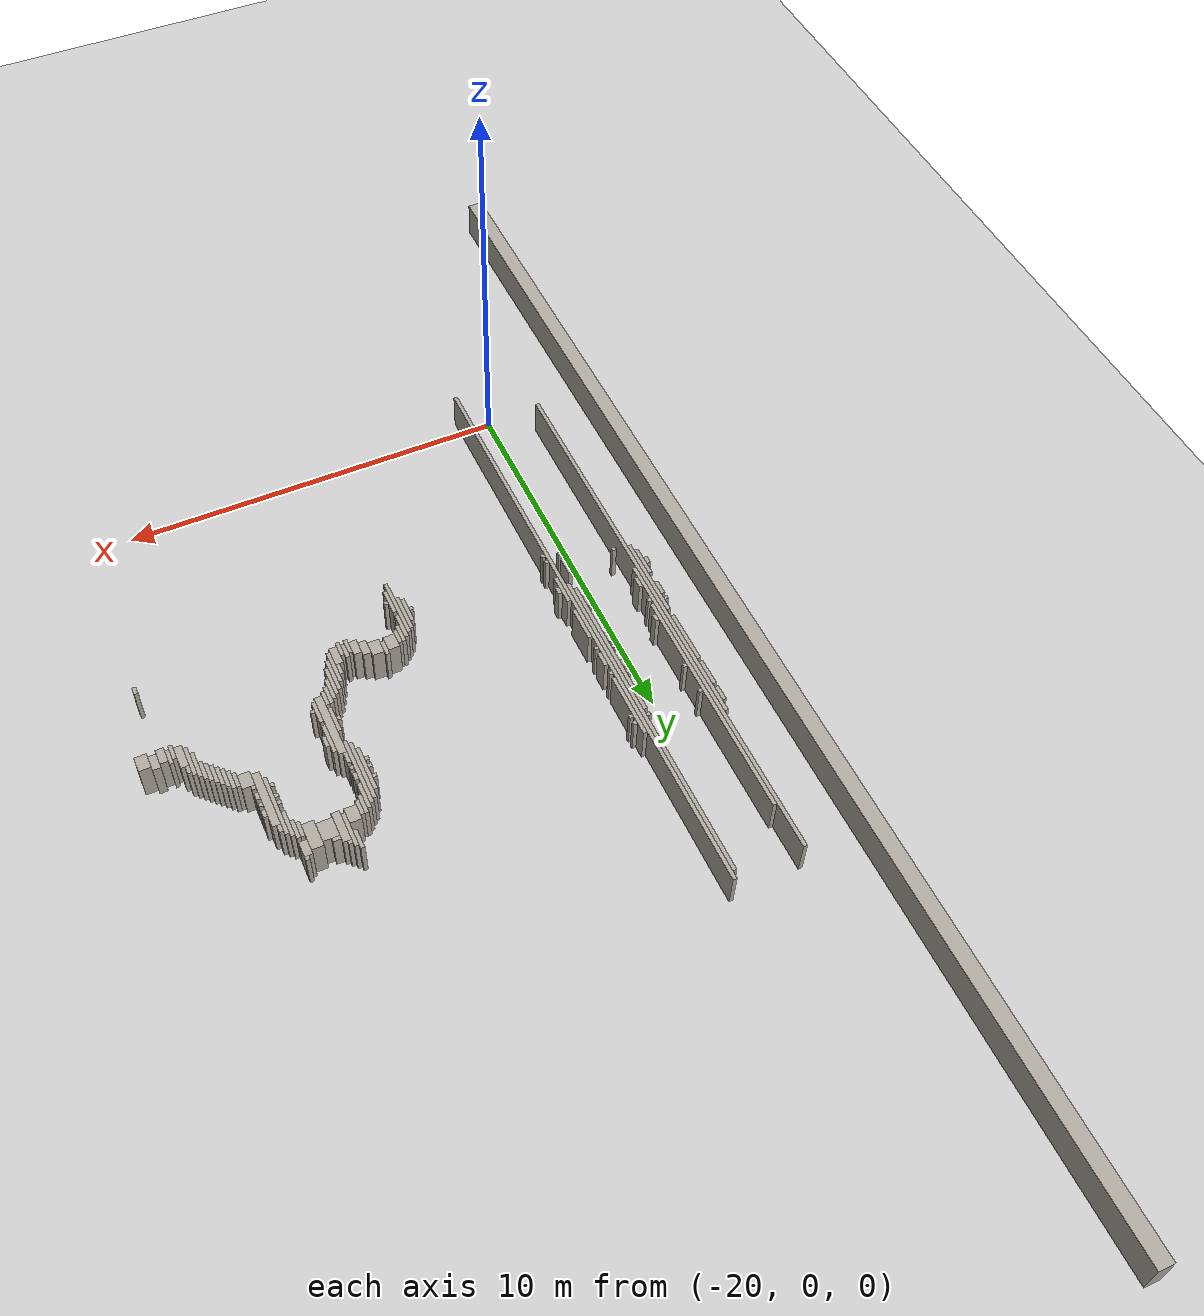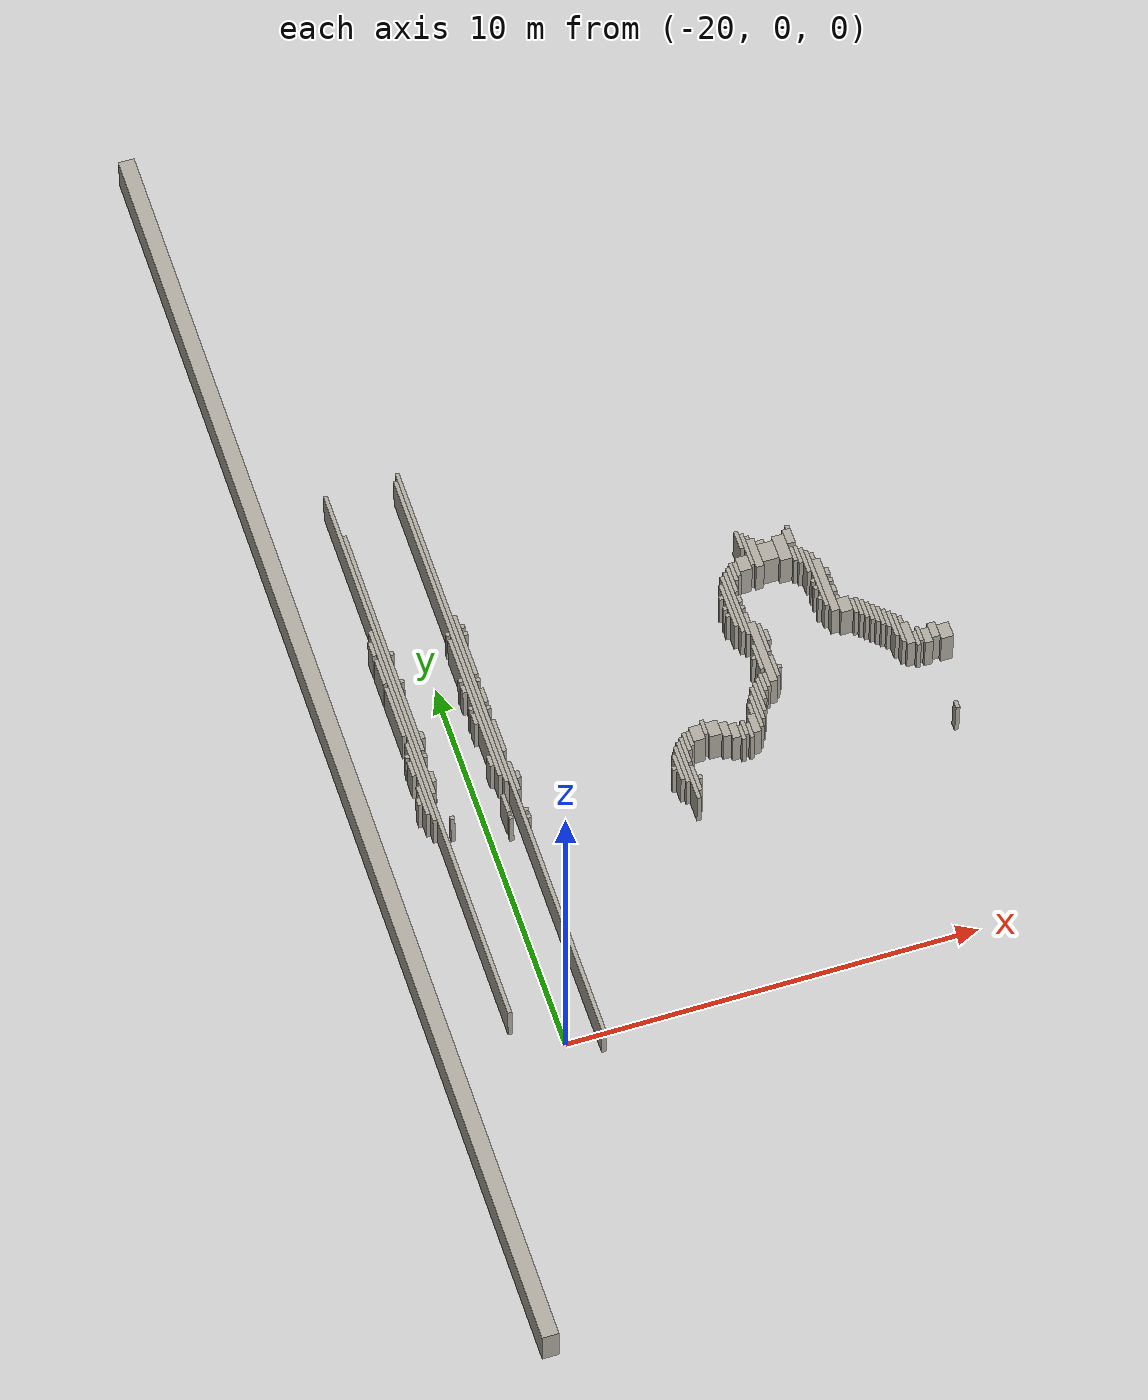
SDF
<sdf version="1.6">
 <world name="willow_office">
  <include><uri>model://sun</uri></include>
  <include><uri>model://ground_plane</uri></include>
  <model name="willow_office_walls">
   <static>true</static>
   <link name="w0001">
    <pose>-22.785 9.262 0.500 0 0 0</pose>
    <collision name="c"><geometry><box><size>0.400 33.600 1.000</size></box></geometry></collision>
    <visual name="v">
     <geometry><box><size>0.400 33.600 1.000</size></box></geometry>
     <material><ambient>0.68 0.66 0.62 1</ambient><diffuse>0.68 0.66 0.62 1</diffuse></material>
    </visual>
   </link>
   <link name="w0492">
    <pose>-19.235 7.512 0.500 0 0 0</pose>
    <collision name="c"><geometry><box><size>0.100 15.900 1.000</size></box></geometry></collision>
    <visual name="v">
     <geometry><box><size>0.100 15.900 1.000</size></box></geometry>
     <material><ambient>0.68 0.66 0.62 1</ambient><diffuse>0.68 0.66 0.62 1</diffuse></material>
    </visual>
   </link>
   <link name="w0516">
    <pose>-21.135 6.062 0.500 0 0 0</pose>
    <collision name="c"><geometry><box><size>0.100 10.800 1.000</size></box></geometry></collision>
    <visual name="v">
     <geometry><box><size>0.100 10.800 1.000</size></box></geometry>
     <material><ambient>0.68 0.66 0.62 1</ambient><diffuse>0.68 0.66 0.62 1</diffuse></material>
    </visual>
   </link>
   <link name="w0625">
    <pose>-15.235 5.562 0.500 0 0 0</pose>
    <collision name="c"><geometry><box><size>0.100 1.600 1.000</size></box></geometry></collision>
    <visual name="v">
     <geometry><box><size>0.100 1.600 1.000</size></box></geometry>
     <material><ambient>0.68 0.66 0.62 1</ambient><diffuse>0.68 0.66 0.62 1</diffuse></material>
    </visual>
   </link>
   <link name="w0631">
    <pose>-15.135 5.312 0.500 0 0 0</pose>
    <collision name="c"><geometry><box><size>0.100 0.700 1.000</size></box></geometry></collision>
    <visual name="v">
     <geometry><box><size>0.100 0.700 1.000</size></box></geometry>
     <material><ambient>0.68 0.66 0.62 1</ambient><diffuse>0.68 0.66 0.62 1</diffuse></material>
    </visual>
   </link>
   <link name="w0633">
    <pose>-15.335 5.762 0.500 0 0 0</pose>
    <collision name="c"><geometry><box><size>0.100 1.000 1.000</size></box></geometry></collision>
    <visual name="v">
     <geometry><box><size>0.100 1.000 1.000</size></box></geometry>
     <material><ambient>0.68 0.66 0.62 1</ambient><diffuse>0.68 0.66 0.62 1</diffuse></material>
    </visual>
   </link>
   <link name="w0634">
    <pose>-15.035 5.312 0.500 0 0 0</pose>
    <collision name="c"><geometry><box><size>0.100 0.100 1.000</size></box></geometry></collision>
    <visual name="v">
     <geometry><box><size>0.100 0.100 1.000</size></box></geometry>
     <material><ambient>0.68 0.66 0.62 1</ambient><diffuse>0.68 0.66 0.62 1</diffuse></material>
    </visual>
   </link>
   <link name="w0635">
    <pose>-8.735 5.362 0.500 0 0 0</pose>
    <collision name="c"><geometry><box><size>0.100 0.200 1.000</size></box></geometry></collision>
    <visual name="v">
     <geometry><box><size>0.100 0.200 1.000</size></box></geometry>
     <material><ambient>0.68 0.66 0.62 1</ambient><diffuse>0.68 0.66 0.62 1</diffuse></material>
    </visual>
   </link>
   <link name="w0638">
    <pose>-15.435 5.712 0.500 0 0 0</pose>
    <collision name="c"><geometry><box><size>0.100 0.700 1.000</size></box></geometry></collision>
    <visual name="v">
     <geometry><box><size>0.100 0.700 1.000</size></box></geometry>
     <material><ambient>0.68 0.66 0.62 1</ambient><diffuse>0.68 0.66 0.62 1</diffuse></material>
    </visual>
   </link>
   <link name="w0640">
    <pose>-19.135 5.512 0.500 0 0 0</pose>
    <collision name="c"><geometry><box><size>0.100 0.100 1.000</size></box></geometry></collision>
    <visual name="v">
     <geometry><box><size>0.100 0.100 1.000</size></box></geometry>
     <material><ambient>0.68 0.66 0.62 1</ambient><diffuse>0.68 0.66 0.62 1</diffuse></material>
    </visual>
   </link>
   <link name="w0643">
    <pose>-19.535 5.612 0.500 0 0 0</pose>
    <collision name="c"><geometry><box><size>0.100 0.100 1.000</size></box></geometry></collision>
    <visual name="v">
     <geometry><box><size>0.100 0.100 1.000</size></box></geometry>
     <material><ambient>0.68 0.66 0.62 1</ambient><diffuse>0.68 0.66 0.62 1</diffuse></material>
    </visual>
   </link>
   <link name="w0645">
    <pose>-19.135 5.712 0.500 0 0 0</pose>
    <collision name="c"><geometry><box><size>0.100 0.100 1.000</size></box></geometry></collision>
    <visual name="v">
     <geometry><box><size>0.100 0.100 1.000</size></box></geometry>
     <material><ambient>0.68 0.66 0.62 1</ambient><diffuse>0.68 0.66 0.62 1</diffuse></material>
    </visual>
   </link>
   <link name="w0646">
    <pose>-15.535 5.712 0.500 0 0 0</pose>
    <collision name="c"><geometry><box><size>0.100 0.100 1.000</size></box></geometry></collision>
    <visual name="v">
     <geometry><box><size>0.100 0.100 1.000</size></box></geometry>
     <material><ambient>0.68 0.66 0.62 1</ambient><diffuse>0.68 0.66 0.62 1</diffuse></material>
    </visual>
   </link>
   <link name="w0649">
    <pose>-19.535 6.012 0.500 0 0 0</pose>
    <collision name="c"><geometry><box><size>0.100 0.500 1.000</size></box></geometry></collision>
    <visual name="v">
     <geometry><box><size>0.100 0.500 1.000</size></box></geometry>
     <material><ambient>0.68 0.66 0.62 1</ambient><diffuse>0.68 0.66 0.62 1</diffuse></material>
    </visual>
   </link>
   <link name="w0650">
    <pose>-15.135 6.112 0.500 0 0 0</pose>
    <collision name="c"><geometry><box><size>0.100 0.700 1.000</size></box></geometry></collision>
    <visual name="v">
     <geometry><box><size>0.100 0.700 1.000</size></box></geometry>
     <material><ambient>0.68 0.66 0.62 1</ambient><diffuse>0.68 0.66 0.62 1</diffuse></material>
    </visual>
   </link>
   <link name="w0654">
    <pose>-20.835 6.012 0.500 0 0 0</pose>
    <collision name="c"><geometry><box><size>0.100 0.100 1.000</size></box></geometry></collision>
    <visual name="v">
     <geometry><box><size>0.100 0.100 1.000</size></box></geometry>
     <material><ambient>0.68 0.66 0.62 1</ambient><diffuse>0.68 0.66 0.62 1</diffuse></material>
    </visual>
   </link>
   <link name="w0655">
    <pose>-13.735 6.162 0.500 0 0 0</pose>
    <collision name="c"><geometry><box><size>0.100 0.400 1.000</size></box></geometry></collision>
    <visual name="v">
     <geometry><box><size>0.100 0.400 1.000</size></box></geometry>
     <material><ambient>0.68 0.66 0.62 1</ambient><diffuse>0.68 0.66 0.62 1</diffuse></material>
    </visual>
   </link>
   <link name="w0656">
    <pose>-13.535 6.162 0.500 0 0 0</pose>
    <collision name="c"><geometry><box><size>0.100 0.400 1.000</size></box></geometry></collision>
    <visual name="v">
     <geometry><box><size>0.100 0.400 1.000</size></box></geometry>
     <material><ambient>0.68 0.66 0.62 1</ambient><diffuse>0.68 0.66 0.62 1</diffuse></material>
    </visual>
   </link>
   <link name="w0659">
    <pose>-21.235 7.162 0.500 0 0 0</pose>
    <collision name="c"><geometry><box><size>0.100 2.200 1.000</size></box></geometry></collision>
    <visual name="v">
     <geometry><box><size>0.100 2.200 1.000</size></box></geometry>
     <material><ambient>0.68 0.66 0.62 1</ambient><diffuse>0.68 0.66 0.62 1</diffuse></material>
    </visual>
   </link>
   <link name="w0660">
    <pose>-15.035 6.312 0.500 0 0 0</pose>
    <collision name="c"><geometry><box><size>0.100 0.500 1.000</size></box></geometry></collision>
    <visual name="v">
     <geometry><box><size>0.100 0.500 1.000</size></box></geometry>
     <material><ambient>0.68 0.66 0.62 1</ambient><diffuse>0.68 0.66 0.62 1</diffuse></material>
    </visual>
   </link>
   <link name="w0661">
    <pose>-13.885 6.262 0.500 0 0 0</pose>
    <collision name="c"><geometry><box><size>0.200 0.400 1.000</size></box></geometry></collision>
    <visual name="v">
     <geometry><box><size>0.200 0.400 1.000</size></box></geometry>
     <material><ambient>0.68 0.66 0.62 1</ambient><diffuse>0.68 0.66 0.62 1</diffuse></material>
    </visual>
   </link>
   <link name="w0662">
    <pose>-13.635 6.262 0.500 0 0 0</pose>
    <collision name="c"><geometry><box><size>0.100 0.400 1.000</size></box></geometry></collision>
    <visual name="v">
     <geometry><box><size>0.100 0.400 1.000</size></box></geometry>
     <material><ambient>0.68 0.66 0.62 1</ambient><diffuse>0.68 0.66 0.62 1</diffuse></material>
    </visual>
   </link>
   <link name="w0663">
    <pose>-13.385 6.312 0.500 0 0 0</pose>
    <collision name="c"><geometry><box><size>0.200 0.500 1.000</size></box></geometry></collision>
    <visual name="v">
     <geometry><box><size>0.200 0.500 1.000</size></box></geometry>
     <material><ambient>0.68 0.66 0.62 1</ambient><diffuse>0.68 0.66 0.62 1</diffuse></material>
    </visual>
   </link>
   <link name="w0666">
    <pose>-14.935 6.362 0.500 0 0 0</pose>
    <collision name="c"><geometry><box><size>0.100 0.400 1.000</size></box></geometry></collision>
    <visual name="v">
     <geometry><box><size>0.100 0.400 1.000</size></box></geometry>
     <material><ambient>0.68 0.66 0.62 1</ambient><diffuse>0.68 0.66 0.62 1</diffuse></material>
    </visual>
   </link>
   <link name="w0667">
    <pose>-14.085 6.362 0.500 0 0 0</pose>
    <collision name="c"><geometry><box><size>0.200 0.400 1.000</size></box></geometry></collision>
    <visual name="v">
     <geometry><box><size>0.200 0.400 1.000</size></box></geometry>
     <material><ambient>0.68 0.66 0.62 1</ambient><diffuse>0.68 0.66 0.62 1</diffuse></material>
    </visual>
   </link>
   <link name="w0668">
    <pose>-13.235 6.612 0.500 0 0 0</pose>
    <collision name="c"><geometry><box><size>0.100 0.900 1.000</size></box></geometry></collision>
    <visual name="v">
     <geometry><box><size>0.100 0.900 1.000</size></box></geometry>
     <material><ambient>0.68 0.66 0.62 1</ambient><diffuse>0.68 0.66 0.62 1</diffuse></material>
    </visual>
   </link>
   <link name="w0669">
    <pose>-21.335 6.662 0.500 0 0 0</pose>
    <collision name="c"><geometry><box><size>0.100 0.800 1.000</size></box></geometry></collision>
    <visual name="v">
     <geometry><box><size>0.100 0.800 1.000</size></box></geometry>
     <material><ambient>0.68 0.66 0.62 1</ambient><diffuse>0.68 0.66 0.62 1</diffuse></material>
    </visual>
   </link>
   <link name="w0670">
    <pose>-19.135 6.662 0.500 0 0 0</pose>
    <collision name="c"><geometry><box><size>0.100 0.800 1.000</size></box></geometry></collision>
    <visual name="v">
     <geometry><box><size>0.100 0.800 1.000</size></box></geometry>
     <material><ambient>0.68 0.66 0.62 1</ambient><diffuse>0.68 0.66 0.62 1</diffuse></material>
    </visual>
   </link>
   <link name="w0671">
    <pose>-14.735 6.462 0.500 0 0 0</pose>
    <collision name="c"><geometry><box><size>0.300 0.400 1.000</size></box></geometry></collision>
    <visual name="v">
     <geometry><box><size>0.300 0.400 1.000</size></box></geometry>
     <material><ambient>0.68 0.66 0.62 1</ambient><diffuse>0.68 0.66 0.62 1</diffuse></material>
    </visual>
   </link>
   <link name="w0672">
    <pose>-14.335 6.462 0.500 0 0 0</pose>
    <collision name="c"><geometry><box><size>0.300 0.400 1.000</size></box></geometry></collision>
    <visual name="v">
     <geometry><box><size>0.300 0.400 1.000</size></box></geometry>
     <material><ambient>0.68 0.66 0.62 1</ambient><diffuse>0.68 0.66 0.62 1</diffuse></material>
    </visual>
   </link>
   <link name="w0673">
    <pose>-14.535 6.562 0.500 0 0 0</pose>
    <collision name="c"><geometry><box><size>0.100 0.400 1.000</size></box></geometry></collision>
    <visual name="v">
     <geometry><box><size>0.100 0.400 1.000</size></box></geometry>
     <material><ambient>0.68 0.66 0.62 1</ambient><diffuse>0.68 0.66 0.62 1</diffuse></material>
    </visual>
   </link>
   <link name="w0674">
    <pose>-13.135 6.812 0.500 0 0 0</pose>
    <collision name="c"><geometry><box><size>0.100 0.900 1.000</size></box></geometry></collision>
    <visual name="v">
     <geometry><box><size>0.100 0.900 1.000</size></box></geometry>
     <material><ambient>0.68 0.66 0.62 1</ambient><diffuse>0.68 0.66 0.62 1</diffuse></material>
    </visual>
   </link>
   <link name="w0677">
    <pose>-21.435 6.662 0.500 0 0 0</pose>
    <collision name="c"><geometry><box><size>0.100 0.200 1.000</size></box></geometry></collision>
    <visual name="v">
     <geometry><box><size>0.100 0.200 1.000</size></box></geometry>
     <material><ambient>0.68 0.66 0.62 1</ambient><diffuse>0.68 0.66 0.62 1</diffuse></material>
    </visual>
   </link>
   <link name="w0678">
    <pose>-19.335 10.912 0.500 0 0 0</pose>
    <collision name="c"><geometry><box><size>0.100 8.700 1.000</size></box></geometry></collision>
    <visual name="v">
     <geometry><box><size>0.100 8.700 1.000</size></box></geometry>
     <material><ambient>0.68 0.66 0.62 1</ambient><diffuse>0.68 0.66 0.62 1</diffuse></material>
    </visual>
   </link>
   <link name="w0679">
    <pose>-19.035 6.662 0.500 0 0 0</pose>
    <collision name="c"><geometry><box><size>0.100 0.200 1.000</size></box></geometry></collision>
    <visual name="v">
     <geometry><box><size>0.100 0.200 1.000</size></box></geometry>
     <material><ambient>0.68 0.66 0.62 1</ambient><diffuse>0.68 0.66 0.62 1</diffuse></material>
    </visual>
   </link>
   <link name="w0680">
    <pose>-13.335 6.712 0.500 0 0 0</pose>
    <collision name="c"><geometry><box><size>0.100 0.300 1.000</size></box></geometry></collision>
    <visual name="v">
     <geometry><box><size>0.100 0.300 1.000</size></box></geometry>
     <material><ambient>0.68 0.66 0.62 1</ambient><diffuse>0.68 0.66 0.62 1</diffuse></material>
    </visual>
   </link>
   <link name="w0681">
    <pose>-13.035 6.962 0.500 0 0 0</pose>
    <collision name="c"><geometry><box><size>0.100 0.800 1.000</size></box></geometry></collision>
    <visual name="v">
     <geometry><box><size>0.100 0.800 1.000</size></box></geometry>
     <material><ambient>0.68 0.66 0.62 1</ambient><diffuse>0.68 0.66 0.62 1</diffuse></material>
    </visual>
   </link>
   <link name="w0684">
    <pose>-21.035 11.062 0.500 0 0 0</pose>
    <collision name="c"><geometry><box><size>0.100 8.600 1.000</size></box></geometry></collision>
    <visual name="v">
     <geometry><box><size>0.100 8.600 1.000</size></box></geometry>
     <material><ambient>0.68 0.66 0.62 1</ambient><diffuse>0.68 0.66 0.62 1</diffuse></material>
    </visual>
   </link>
   <link name="w0685">
    <pose>-19.435 8.712 0.500 0 0 0</pose>
    <collision name="c"><geometry><box><size>0.100 3.900 1.000</size></box></geometry></collision>
    <visual name="v">
     <geometry><box><size>0.100 3.900 1.000</size></box></geometry>
     <material><ambient>0.68 0.66 0.62 1</ambient><diffuse>0.68 0.66 0.62 1</diffuse></material>
    </visual>
   </link>
   <link name="w0686">
    <pose>-12.935 7.162 0.500 0 0 0</pose>
    <collision name="c"><geometry><box><size>0.100 0.600 1.000</size></box></geometry></collision>
    <visual name="v">
     <geometry><box><size>0.100 0.600 1.000</size></box></geometry>
     <material><ambient>0.68 0.66 0.62 1</ambient><diffuse>0.68 0.66 0.62 1</diffuse></material>
    </visual>
   </link>
   <link name="w0692">
    <pose>-20.935 7.212 0.500 0 0 0</pose>
    <collision name="c"><geometry><box><size>0.100 0.300 1.000</size></box></geometry></collision>
    <visual name="v">
     <geometry><box><size>0.100 0.300 1.000</size></box></geometry>
     <material><ambient>0.68 0.66 0.62 1</ambient><diffuse>0.68 0.66 0.62 1</diffuse></material>
    </visual>
   </link>
   <link name="w0693">
    <pose>-19.535 7.212 0.500 0 0 0</pose>
    <collision name="c"><geometry><box><size>0.100 0.300 1.000</size></box></geometry></collision>
    <visual name="v">
     <geometry><box><size>0.100 0.300 1.000</size></box></geometry>
     <material><ambient>0.68 0.66 0.62 1</ambient><diffuse>0.68 0.66 0.62 1</diffuse></material>
    </visual>
   </link>
   <link name="w0694">
    <pose>-12.835 7.312 0.500 0 0 0</pose>
    <collision name="c"><geometry><box><size>0.100 0.500 1.000</size></box></geometry></collision>
    <visual name="v">
     <geometry><box><size>0.100 0.500 1.000</size></box></geometry>
     <material><ambient>0.68 0.66 0.62 1</ambient><diffuse>0.68 0.66 0.62 1</diffuse></material>
    </visual>
   </link>
   <link name="w0698">
    <pose>-12.735 7.362 0.500 0 0 0</pose>
    <collision name="c"><geometry><box><size>0.100 0.400 1.000</size></box></geometry></collision>
    <visual name="v">
     <geometry><box><size>0.100 0.400 1.000</size></box></geometry>
     <material><ambient>0.68 0.66 0.62 1</ambient><diffuse>0.68 0.66 0.62 1</diffuse></material>
    </visual>
   </link>
   <link name="w0699">
    <pose>-9.035 7.362 0.500 0 0 0</pose>
    <collision name="c"><geometry><box><size>0.100 0.400 1.000</size></box></geometry></collision>
    <visual name="v">
     <geometry><box><size>0.100 0.400 1.000</size></box></geometry>
     <material><ambient>0.68 0.66 0.62 1</ambient><diffuse>0.68 0.66 0.62 1</diffuse></material>
    </visual>
   </link>
   <link name="w0700">
    <pose>-8.785 7.362 0.500 0 0 0</pose>
    <collision name="c"><geometry><box><size>0.200 0.400 1.000</size></box></geometry></collision>
    <visual name="v">
     <geometry><box><size>0.200 0.400 1.000</size></box></geometry>
     <material><ambient>0.68 0.66 0.62 1</ambient><diffuse>0.68 0.66 0.62 1</diffuse></material>
    </visual>
   </link>
   <link name="w0701">
    <pose>-8.335 7.362 0.500 0 0 0</pose>
    <collision name="c"><geometry><box><size>0.300 0.400 1.000</size></box></geometry></collision>
    <visual name="v">
     <geometry><box><size>0.300 0.400 1.000</size></box></geometry>
     <material><ambient>0.68 0.66 0.62 1</ambient><diffuse>0.68 0.66 0.62 1</diffuse></material>
    </visual>
   </link>
   <link name="w0705">
    <pose>-12.585 8.112 0.500 0 0 0</pose>
    <collision name="c"><geometry><box><size>0.200 1.700 1.000</size></box></geometry></collision>
    <visual name="v">
     <geometry><box><size>0.200 1.700 1.000</size></box></geometry>
     <material><ambient>0.68 0.66 0.62 1</ambient><diffuse>0.68 0.66 0.62 1</diffuse></material>
    </visual>
   </link>
   <link name="w0706">
    <pose>-9.185 7.562 0.500 0 0 0</pose>
    <collision name="c"><geometry><box><size>0.200 0.600 1.000</size></box></geometry></collision>
    <visual name="v">
     <geometry><box><size>0.200 0.600 1.000</size></box></geometry>
     <material><ambient>0.68 0.66 0.62 1</ambient><diffuse>0.68 0.66 0.62 1</diffuse></material>
    </visual>
   </link>
   <link name="w0707">
    <pose>-8.935 7.462 0.500 0 0 0</pose>
    <collision name="c"><geometry><box><size>0.100 0.400 1.000</size></box></geometry></collision>
    <visual name="v">
     <geometry><box><size>0.100 0.400 1.000</size></box></geometry>
     <material><ambient>0.68 0.66 0.62 1</ambient><diffuse>0.68 0.66 0.62 1</diffuse></material>
    </visual>
   </link>
   <link name="w0708">
    <pose>-8.585 7.462 0.500 0 0 0</pose>
    <collision name="c"><geometry><box><size>0.200 0.400 1.000</size></box></geometry></collision>
    <visual name="v">
     <geometry><box><size>0.200 0.400 1.000</size></box></geometry>
     <material><ambient>0.68 0.66 0.62 1</ambient><diffuse>0.68 0.66 0.62 1</diffuse></material>
    </visual>
   </link>
   <link name="w0711">
    <pose>-21.335 7.562 0.500 0 0 0</pose>
    <collision name="c"><geometry><box><size>0.100 0.400 1.000</size></box></geometry></collision>
    <visual name="v">
     <geometry><box><size>0.100 0.400 1.000</size></box></geometry>
     <material><ambient>0.68 0.66 0.62 1</ambient><diffuse>0.68 0.66 0.62 1</diffuse></material>
    </visual>
   </link>
   <link name="w0712">
    <pose>-19.135 7.812 0.500 0 0 0</pose>
    <collision name="c"><geometry><box><size>0.100 0.900 1.000</size></box></geometry></collision>
    <visual name="v">
     <geometry><box><size>0.100 0.900 1.000</size></box></geometry>
     <material><ambient>0.68 0.66 0.62 1</ambient><diffuse>0.68 0.66 0.62 1</diffuse></material>
    </visual>
   </link>
   <link name="w0713">
    <pose>-12.435 7.662 0.500 0 0 0</pose>
    <collision name="c"><geometry><box><size>0.100 0.600 1.000</size></box></geometry></collision>
    <visual name="v">
     <geometry><box><size>0.100 0.600 1.000</size></box></geometry>
     <material><ambient>0.68 0.66 0.62 1</ambient><diffuse>0.68 0.66 0.62 1</diffuse></material>
    </visual>
   </link>
   <link name="w0714">
    <pose>-9.335 7.762 0.500 0 0 0</pose>
    <collision name="c"><geometry><box><size>0.100 0.800 1.000</size></box></geometry></collision>
    <visual name="v">
     <geometry><box><size>0.100 0.800 1.000</size></box></geometry>
     <material><ambient>0.68 0.66 0.62 1</ambient><diffuse>0.68 0.66 0.62 1</diffuse></material>
    </visual>
   </link>
   <link name="w0720">
    <pose>-12.335 7.612 0.500 0 0 0</pose>
    <collision name="c"><geometry><box><size>0.100 0.100 1.000</size></box></geometry></collision>
    <visual name="v">
     <geometry><box><size>0.100 0.100 1.000</size></box></geometry>
     <material><ambient>0.68 0.66 0.62 1</ambient><diffuse>0.68 0.66 0.62 1</diffuse></material>
    </visual>
   </link>
   <link name="w0721">
    <pose>-9.435 7.912 0.500 0 0 0</pose>
    <collision name="c"><geometry><box><size>0.100 0.700 1.000</size></box></geometry></collision>
    <visual name="v">
     <geometry><box><size>0.100 0.700 1.000</size></box></geometry>
     <material><ambient>0.68 0.66 0.62 1</ambient><diffuse>0.68 0.66 0.62 1</diffuse></material>
    </visual>
   </link>
   <link name="w0725">
    <pose>-12.735 8.012 0.500 0 0 0</pose>
    <collision name="c"><geometry><box><size>0.100 0.700 1.000</size></box></geometry></collision>
    <visual name="v">
     <geometry><box><size>0.100 0.700 1.000</size></box></geometry>
     <material><ambient>0.68 0.66 0.62 1</ambient><diffuse>0.68 0.66 0.62 1</diffuse></material>
    </visual>
   </link>
   <link name="w0728">
    <pose>-20.935 7.812 0.500 0 0 0</pose>
    <collision name="c"><geometry><box><size>0.100 0.100 1.000</size></box></geometry></collision>
    <visual name="v">
     <geometry><box><size>0.100 0.100 1.000</size></box></geometry>
     <material><ambient>0.68 0.66 0.62 1</ambient><diffuse>0.68 0.66 0.62 1</diffuse></material>
    </visual>
   </link>
   <link name="w0731">
    <pose>-21.335 7.912 0.500 0 0 0</pose>
    <collision name="c"><geometry><box><size>0.100 0.100 1.000</size></box></geometry></collision>
    <visual name="v">
     <geometry><box><size>0.100 0.100 1.000</size></box></geometry>
     <material><ambient>0.68 0.66 0.62 1</ambient><diffuse>0.68 0.66 0.62 1</diffuse></material>
    </visual>
   </link>
   <link name="w0732">
    <pose>-9.535 8.112 0.500 0 0 0</pose>
    <collision name="c"><geometry><box><size>0.100 0.500 1.000</size></box></geometry></collision>
    <visual name="v">
     <geometry><box><size>0.100 0.500 1.000</size></box></geometry>
     <material><ambient>0.68 0.66 0.62 1</ambient><diffuse>0.68 0.66 0.62 1</diffuse></material>
    </visual>
   </link>
   <link name="w0733">
    <pose>-9.235 7.962 0.500 0 0 0</pose>
    <collision name="c"><geometry><box><size>0.100 0.200 1.000</size></box></geometry></collision>
    <visual name="v">
     <geometry><box><size>0.100 0.200 1.000</size></box></geometry>
     <material><ambient>0.68 0.66 0.62 1</ambient><diffuse>0.68 0.66 0.62 1</diffuse></material>
    </visual>
   </link>
   <link name="w0737">
    <pose>-20.935 11.062 0.500 0 0 0</pose>
    <collision name="c"><geometry><box><size>0.100 6.200 1.000</size></box></geometry></collision>
    <visual name="v">
     <geometry><box><size>0.100 6.200 1.000</size></box></geometry>
     <material><ambient>0.68 0.66 0.62 1</ambient><diffuse>0.68 0.66 0.62 1</diffuse></material>
    </visual>
   </link>
   <link name="w0738">
    <pose>-12.835 8.012 0.500 0 0 0</pose>
    <collision name="c"><geometry><box><size>0.100 0.100 1.000</size></box></geometry></collision>
    <visual name="v">
     <geometry><box><size>0.100 0.100 1.000</size></box></geometry>
     <material><ambient>0.68 0.66 0.62 1</ambient><diffuse>0.68 0.66 0.62 1</diffuse></material>
    </visual>
   </link>
   <link name="w0739">
    <pose>-9.635 8.212 0.500 0 0 0</pose>
    <collision name="c"><geometry><box><size>0.100 0.500 1.000</size></box></geometry></collision>
    <visual name="v">
     <geometry><box><size>0.100 0.500 1.000</size></box></geometry>
     <material><ambient>0.68 0.66 0.62 1</ambient><diffuse>0.68 0.66 0.62 1</diffuse></material>
    </visual>
   </link>
   <link name="w0740">
    <pose>-12.435 8.462 0.500 0 0 0</pose>
    <collision name="c"><geometry><box><size>0.100 0.800 1.000</size></box></geometry></collision>
    <visual name="v">
     <geometry><box><size>0.100 0.800 1.000</size></box></geometry>
     <material><ambient>0.68 0.66 0.62 1</ambient><diffuse>0.68 0.66 0.62 1</diffuse></material>
    </visual>
   </link>
   <link name="w0741">
    <pose>-9.735 8.312 0.500 0 0 0</pose>
    <collision name="c"><geometry><box><size>0.100 0.500 1.000</size></box></geometry></collision>
    <visual name="v">
     <geometry><box><size>0.100 0.500 1.000</size></box></geometry>
     <material><ambient>0.68 0.66 0.62 1</ambient><diffuse>0.68 0.66 0.62 1</diffuse></material>
    </visual>
   </link>
   <link name="w0743">
    <pose>-9.835 8.412 0.500 0 0 0</pose>
    <collision name="c"><geometry><box><size>0.100 0.500 1.000</size></box></geometry></collision>
    <visual name="v">
     <geometry><box><size>0.100 0.500 1.000</size></box></geometry>
     <material><ambient>0.68 0.66 0.62 1</ambient><diffuse>0.68 0.66 0.62 1</diffuse></material>
    </visual>
   </link>
   <link name="w0744">
    <pose>-20.835 8.362 0.500 0 0 0</pose>
    <collision name="c"><geometry><box><size>0.100 0.200 1.000</size></box></geometry></collision>
    <visual name="v">
     <geometry><box><size>0.100 0.200 1.000</size></box></geometry>
     <material><ambient>0.68 0.66 0.62 1</ambient><diffuse>0.68 0.66 0.62 1</diffuse></material>
    </visual>
   </link>
   <link name="w0745">
    <pose>-19.535 8.412 0.500 0 0 0</pose>
    <collision name="c"><geometry><box><size>0.100 0.300 1.000</size></box></geometry></collision>
    <visual name="v">
     <geometry><box><size>0.100 0.300 1.000</size></box></geometry>
     <material><ambient>0.68 0.66 0.62 1</ambient><diffuse>0.68 0.66 0.62 1</diffuse></material>
    </visual>
   </link>
   <link name="w0746">
    <pose>-9.935 8.512 0.500 0 0 0</pose>
    <collision name="c"><geometry><box><size>0.100 0.500 1.000</size></box></geometry></collision>
    <visual name="v">
     <geometry><box><size>0.100 0.500 1.000</size></box></geometry>
     <material><ambient>0.68 0.66 0.62 1</ambient><diffuse>0.68 0.66 0.62 1</diffuse></material>
    </visual>
   </link>
   <link name="w0748">
    <pose>-12.335 8.512 0.500 0 0 0</pose>
    <collision name="c"><geometry><box><size>0.100 0.300 1.000</size></box></geometry></collision>
    <visual name="v">
     <geometry><box><size>0.100 0.300 1.000</size></box></geometry>
     <material><ambient>0.68 0.66 0.62 1</ambient><diffuse>0.68 0.66 0.62 1</diffuse></material>
    </visual>
   </link>
   <link name="w0749">
    <pose>-10.035 8.612 0.500 0 0 0</pose>
    <collision name="c"><geometry><box><size>0.100 0.500 1.000</size></box></geometry></collision>
    <visual name="v">
     <geometry><box><size>0.100 0.500 1.000</size></box></geometry>
     <material><ambient>0.68 0.66 0.62 1</ambient><diffuse>0.68 0.66 0.62 1</diffuse></material>
    </visual>
   </link>
   <link name="w0751">
    <pose>-21.235 9.162 0.500 0 0 0</pose>
    <collision name="c"><geometry><box><size>0.100 1.400 1.000</size></box></geometry></collision>
    <visual name="v">
     <geometry><box><size>0.100 1.400 1.000</size></box></geometry>
     <material><ambient>0.68 0.66 0.62 1</ambient><diffuse>0.68 0.66 0.62 1</diffuse></material>
    </visual>
   </link>
   <link name="w0752">
    <pose>-10.135 8.662 0.500 0 0 0</pose>
    <collision name="c"><geometry><box><size>0.100 0.400 1.000</size></box></geometry></collision>
    <visual name="v">
     <geometry><box><size>0.100 0.400 1.000</size></box></geometry>
     <material><ambient>0.68 0.66 0.62 1</ambient><diffuse>0.68 0.66 0.62 1</diffuse></material>
    </visual>
   </link>
   <link name="w0753">
    <pose>-19.135 8.612 0.500 0 0 0</pose>
    <collision name="c"><geometry><box><size>0.100 0.100 1.000</size></box></geometry></collision>
    <visual name="v">
     <geometry><box><size>0.100 0.100 1.000</size></box></geometry>
     <material><ambient>0.68 0.66 0.62 1</ambient><diffuse>0.68 0.66 0.62 1</diffuse></material>
    </visual>
   </link>
   <link name="w0754">
    <pose>-10.335 8.762 0.500 0 0 0</pose>
    <collision name="c"><geometry><box><size>0.300 0.400 1.000</size></box></geometry></collision>
    <visual name="v">
     <geometry><box><size>0.300 0.400 1.000</size></box></geometry>
     <material><ambient>0.68 0.66 0.62 1</ambient><diffuse>0.68 0.66 0.62 1</diffuse></material>
    </visual>
   </link>
   <link name="w0755">
    <pose>-19.535 8.712 0.500 0 0 0</pose>
    <collision name="c"><geometry><box><size>0.100 0.100 1.000</size></box></geometry></collision>
    <visual name="v">
     <geometry><box><size>0.100 0.100 1.000</size></box></geometry>
     <material><ambient>0.68 0.66 0.62 1</ambient><diffuse>0.68 0.66 0.62 1</diffuse></material>
    </visual>
   </link>
   <link name="w0756">
    <pose>-12.735 9.562 0.500 0 0 0</pose>
    <collision name="c"><geometry><box><size>0.100 1.800 1.000</size></box></geometry></collision>
    <visual name="v">
     <geometry><box><size>0.100 1.800 1.000</size></box></geometry>
     <material><ambient>0.68 0.66 0.62 1</ambient><diffuse>0.68 0.66 0.62 1</diffuse></material>
    </visual>
   </link>
   <link name="w0757">
    <pose>-10.585 9.412 0.500 0 0 0</pose>
    <collision name="c"><geometry><box><size>0.200 1.500 1.000</size></box></geometry></collision>
    <visual name="v">
     <geometry><box><size>0.200 1.500 1.000</size></box></geometry>
     <material><ambient>0.68 0.66 0.62 1</ambient><diffuse>0.68 0.66 0.62 1</diffuse></material>
    </visual>
   </link>
   <link name="w0758">
    <pose>-19.135 8.962 0.500 0 0 0</pose>
    <collision name="c"><geometry><box><size>0.100 0.400 1.000</size></box></geometry></collision>
    <visual name="v">
     <geometry><box><size>0.100 0.400 1.000</size></box></geometry>
     <material><ambient>0.68 0.66 0.62 1</ambient><diffuse>0.68 0.66 0.62 1</diffuse></material>
    </visual>
   </link>
   <link name="w0759">
    <pose>-12.835 9.562 0.500 0 0 0</pose>
    <collision name="c"><geometry><box><size>0.100 1.600 1.000</size></box></geometry></collision>
    <visual name="v">
     <geometry><box><size>0.100 1.600 1.000</size></box></geometry>
     <material><ambient>0.68 0.66 0.62 1</ambient><diffuse>0.68 0.66 0.62 1</diffuse></material>
    </visual>
   </link>
   <link name="w0761">
    <pose>-10.735 9.662 0.500 0 0 0</pose>
    <collision name="c"><geometry><box><size>0.100 1.600 1.000</size></box></geometry></collision>
    <visual name="v">
     <geometry><box><size>0.100 1.600 1.000</size></box></geometry>
     <material><ambient>0.68 0.66 0.62 1</ambient><diffuse>0.68 0.66 0.62 1</diffuse></material>
    </visual>
   </link>
   <link name="w0763">
    <pose>-12.935 9.562 0.500 0 0 0</pose>
    <collision name="c"><geometry><box><size>0.100 1.200 1.000</size></box></geometry></collision>
    <visual name="v">
     <geometry><box><size>0.100 1.200 1.000</size></box></geometry>
     <material><ambient>0.68 0.66 0.62 1</ambient><diffuse>0.68 0.66 0.62 1</diffuse></material>
    </visual>
   </link>
   <link name="w0764">
    <pose>-12.635 9.112 0.500 0 0 0</pose>
    <collision name="c"><geometry><box><size>0.100 0.300 1.000</size></box></geometry></collision>
    <visual name="v">
     <geometry><box><size>0.100 0.300 1.000</size></box></geometry>
     <material><ambient>0.68 0.66 0.62 1</ambient><diffuse>0.68 0.66 0.62 1</diffuse></material>
    </visual>
   </link>
   <link name="w0765">
    <pose>-10.435 9.012 0.500 0 0 0</pose>
    <collision name="c"><geometry><box><size>0.100 0.100 1.000</size></box></geometry></collision>
    <visual name="v">
     <geometry><box><size>0.100 0.100 1.000</size></box></geometry>
     <material><ambient>0.68 0.66 0.62 1</ambient><diffuse>0.68 0.66 0.62 1</diffuse></material>
    </visual>
   </link>
   <link name="w0767">
    <pose>-10.835 9.112 0.500 0 0 0</pose>
    <collision name="c"><geometry><box><size>0.100 0.100 1.000</size></box></geometry></collision>
    <visual name="v">
     <geometry><box><size>0.100 0.100 1.000</size></box></geometry>
     <material><ambient>0.68 0.66 0.62 1</ambient><diffuse>0.68 0.66 0.62 1</diffuse></material>
    </visual>
   </link>
   <link name="w0768">
    <pose>-19.535 9.262 0.500 0 0 0</pose>
    <collision name="c"><geometry><box><size>0.100 0.200 1.000</size></box></geometry></collision>
    <visual name="v">
     <geometry><box><size>0.100 0.200 1.000</size></box></geometry>
     <material><ambient>0.68 0.66 0.62 1</ambient><diffuse>0.68 0.66 0.62 1</diffuse></material>
    </visual>
   </link>
   <link name="w0769">
    <pose>-10.435 9.262 0.500 0 0 0</pose>
    <collision name="c"><geometry><box><size>0.100 0.200 1.000</size></box></geometry></collision>
    <visual name="v">
     <geometry><box><size>0.100 0.200 1.000</size></box></geometry>
     <material><ambient>0.68 0.66 0.62 1</ambient><diffuse>0.68 0.66 0.62 1</diffuse></material>
    </visual>
   </link>
   <link name="w0771">
    <pose>-13.035 9.312 0.500 0 0 0</pose>
    <collision name="c"><geometry><box><size>0.100 0.100 1.000</size></box></geometry></collision>
    <visual name="v">
     <geometry><box><size>0.100 0.100 1.000</size></box></geometry>
     <material><ambient>0.68 0.66 0.62 1</ambient><diffuse>0.68 0.66 0.62 1</diffuse></material>
    </visual>
   </link>
   <link name="w0773">
    <pose>-19.135 9.412 0.500 0 0 0</pose>
    <collision name="c"><geometry><box><size>0.100 0.100 1.000</size></box></geometry></collision>
    <visual name="v">
     <geometry><box><size>0.100 0.100 1.000</size></box></geometry>
     <material><ambient>0.68 0.66 0.62 1</ambient><diffuse>0.68 0.66 0.62 1</diffuse></material>
    </visual>
   </link>
   <link name="w0774">
    <pose>-12.635 9.412 0.500 0 0 0</pose>
    <collision name="c"><geometry><box><size>0.100 0.100 1.000</size></box></geometry></collision>
    <visual name="v">
     <geometry><box><size>0.100 0.100 1.000</size></box></geometry>
     <material><ambient>0.68 0.66 0.62 1</ambient><diffuse>0.68 0.66 0.62 1</diffuse></material>
    </visual>
   </link>
   <link name="w0775">
    <pose>-10.835 9.412 0.500 0 0 0</pose>
    <collision name="c"><geometry><box><size>0.100 0.100 1.000</size></box></geometry></collision>
    <visual name="v">
     <geometry><box><size>0.100 0.100 1.000</size></box></geometry>
     <material><ambient>0.68 0.66 0.62 1</ambient><diffuse>0.68 0.66 0.62 1</diffuse></material>
    </visual>
   </link>
   <link name="w0777">
    <pose>-19.535 9.512 0.500 0 0 0</pose>
    <collision name="c"><geometry><box><size>0.100 0.100 1.000</size></box></geometry></collision>
    <visual name="v">
     <geometry><box><size>0.100 0.100 1.000</size></box></geometry>
     <material><ambient>0.68 0.66 0.62 1</ambient><diffuse>0.68 0.66 0.62 1</diffuse></material>
    </visual>
   </link>
   <link name="w0778">
    <pose>-13.035 9.512 0.500 0 0 0</pose>
    <collision name="c"><geometry><box><size>0.100 0.100 1.000</size></box></geometry></collision>
    <visual name="v">
     <geometry><box><size>0.100 0.100 1.000</size></box></geometry>
     <material><ambient>0.68 0.66 0.62 1</ambient><diffuse>0.68 0.66 0.62 1</diffuse></material>
    </visual>
   </link>
   <link name="w0779">
    <pose>-10.435 9.512 0.500 0 0 0</pose>
    <collision name="c"><geometry><box><size>0.100 0.100 1.000</size></box></geometry></collision>
    <visual name="v">
     <geometry><box><size>0.100 0.100 1.000</size></box></geometry>
     <material><ambient>0.68 0.66 0.62 1</ambient><diffuse>0.68 0.66 0.62 1</diffuse></material>
    </visual>
   </link>
   <link name="w0780">
    <pose>-19.135 10.412 0.500 0 0 0</pose>
    <collision name="c"><geometry><box><size>0.100 1.700 1.000</size></box></geometry></collision>
    <visual name="v">
     <geometry><box><size>0.100 1.700 1.000</size></box></geometry>
     <material><ambient>0.68 0.66 0.62 1</ambient><diffuse>0.68 0.66 0.62 1</diffuse></material>
    </visual>
   </link>
   <link name="w0781">
    <pose>-12.635 9.662 0.500 0 0 0</pose>
    <collision name="c"><geometry><box><size>0.100 0.200 1.000</size></box></geometry></collision>
    <visual name="v">
     <geometry><box><size>0.100 0.200 1.000</size></box></geometry>
     <material><ambient>0.68 0.66 0.62 1</ambient><diffuse>0.68 0.66 0.62 1</diffuse></material>
    </visual>
   </link>
   <link name="w0782">
    <pose>-10.835 9.612 0.500 0 0 0</pose>
    <collision name="c"><geometry><box><size>0.100 0.100 1.000</size></box></geometry></collision>
    <visual name="v">
     <geometry><box><size>0.100 0.100 1.000</size></box></geometry>
     <material><ambient>0.68 0.66 0.62 1</ambient><diffuse>0.68 0.66 0.62 1</diffuse></material>
    </visual>
   </link>
   <link name="w0783">
    <pose>-10.435 9.762 0.500 0 0 0</pose>
    <collision name="c"><geometry><box><size>0.100 0.200 1.000</size></box></geometry></collision>
    <visual name="v">
     <geometry><box><size>0.100 0.200 1.000</size></box></geometry>
     <material><ambient>0.68 0.66 0.62 1</ambient><diffuse>0.68 0.66 0.62 1</diffuse></material>
    </visual>
   </link>
   <link name="w0785">
    <pose>-13.035 9.812 0.500 0 0 0</pose>
    <collision name="c"><geometry><box><size>0.100 0.100 1.000</size></box></geometry></collision>
    <visual name="v">
     <geometry><box><size>0.100 0.100 1.000</size></box></geometry>
     <material><ambient>0.68 0.66 0.62 1</ambient><diffuse>0.68 0.66 0.62 1</diffuse></material>
    </visual>
   </link>
   <link name="w0786">
    <pose>-20.835 9.912 0.500 0 0 0</pose>
    <collision name="c"><geometry><box><size>0.100 0.100 1.000</size></box></geometry></collision>
    <visual name="v">
     <geometry><box><size>0.100 0.100 1.000</size></box></geometry>
     <material><ambient>0.68 0.66 0.62 1</ambient><diffuse>0.68 0.66 0.62 1</diffuse></material>
    </visual>
   </link>
   <link name="w0787">
    <pose>-12.635 10.212 0.500 0 0 0</pose>
    <collision name="c"><geometry><box><size>0.100 0.700 1.000</size></box></geometry></collision>
    <visual name="v">
     <geometry><box><size>0.100 0.700 1.000</size></box></geometry>
     <material><ambient>0.68 0.66 0.62 1</ambient><diffuse>0.68 0.66 0.62 1</diffuse></material>
    </visual>
   </link>
   <link name="w0788">
    <pose>-10.835 10.212 0.500 0 0 0</pose>
    <collision name="c"><geometry><box><size>0.100 0.700 1.000</size></box></geometry></collision>
    <visual name="v">
     <geometry><box><size>0.100 0.700 1.000</size></box></geometry>
     <material><ambient>0.68 0.66 0.62 1</ambient><diffuse>0.68 0.66 0.62 1</diffuse></material>
    </visual>
   </link>
   <link name="w0789">
    <pose>-21.235 10.312 0.500 0 0 0</pose>
    <collision name="c"><geometry><box><size>0.100 0.700 1.000</size></box></geometry></collision>
    <visual name="v">
     <geometry><box><size>0.100 0.700 1.000</size></box></geometry>
     <material><ambient>0.68 0.66 0.62 1</ambient><diffuse>0.68 0.66 0.62 1</diffuse></material>
    </visual>
   </link>
   <link name="w0791">
    <pose>-12.535 10.412 0.500 0 0 0</pose>
    <collision name="c"><geometry><box><size>0.100 0.500 1.000</size></box></geometry></collision>
    <visual name="v">
     <geometry><box><size>0.100 0.500 1.000</size></box></geometry>
     <material><ambient>0.68 0.66 0.62 1</ambient><diffuse>0.68 0.66 0.62 1</diffuse></material>
    </visual>
   </link>
   <link name="w0792">
    <pose>-10.935 10.412 0.500 0 0 0</pose>
    <collision name="c"><geometry><box><size>0.100 0.500 1.000</size></box></geometry></collision>
    <visual name="v">
     <geometry><box><size>0.100 0.500 1.000</size></box></geometry>
     <material><ambient>0.68 0.66 0.62 1</ambient><diffuse>0.68 0.66 0.62 1</diffuse></material>
    </visual>
   </link>
   <link name="w0793">
    <pose>-10.635 10.262 0.500 0 0 0</pose>
    <collision name="c"><geometry><box><size>0.100 0.200 1.000</size></box></geometry></collision>
    <visual name="v">
     <geometry><box><size>0.100 0.200 1.000</size></box></geometry>
     <material><ambient>0.68 0.66 0.62 1</ambient><diffuse>0.68 0.66 0.62 1</diffuse></material>
    </visual>
   </link>
   <link name="w0795">
    <pose>-12.435 10.462 0.500 0 0 0</pose>
    <collision name="c"><geometry><box><size>0.100 0.400 1.000</size></box></geometry></collision>
    <visual name="v">
     <geometry><box><size>0.100 0.400 1.000</size></box></geometry>
     <material><ambient>0.68 0.66 0.62 1</ambient><diffuse>0.68 0.66 0.62 1</diffuse></material>
    </visual>
   </link>
   <link name="w0796">
    <pose>-11.035 10.462 0.500 0 0 0</pose>
    <collision name="c"><geometry><box><size>0.100 0.400 1.000</size></box></geometry></collision>
    <visual name="v">
     <geometry><box><size>0.100 0.400 1.000</size></box></geometry>
     <material><ambient>0.68 0.66 0.62 1</ambient><diffuse>0.68 0.66 0.62 1</diffuse></material>
    </visual>
   </link>
   <link name="w0797">
    <pose>-12.235 10.562 0.500 0 0 0</pose>
    <collision name="c"><geometry><box><size>0.300 0.400 1.000</size></box></geometry></collision>
    <visual name="v">
     <geometry><box><size>0.300 0.400 1.000</size></box></geometry>
     <material><ambient>0.68 0.66 0.62 1</ambient><diffuse>0.68 0.66 0.62 1</diffuse></material>
    </visual>
   </link>
   <link name="w0798">
    <pose>-11.885 10.762 0.500 0 0 0</pose>
    <collision name="c"><geometry><box><size>0.200 0.800 1.000</size></box></geometry></collision>
    <visual name="v">
     <geometry><box><size>0.200 0.800 1.000</size></box></geometry>
     <material><ambient>0.68 0.66 0.62 1</ambient><diffuse>0.68 0.66 0.62 1</diffuse></material>
    </visual>
   </link>
   <link name="w0799">
    <pose>-11.235 10.712 0.500 0 0 0</pose>
    <collision name="c"><geometry><box><size>0.300 0.700 1.000</size></box></geometry></collision>
    <visual name="v">
     <geometry><box><size>0.300 0.700 1.000</size></box></geometry>
     <material><ambient>0.68 0.66 0.62 1</ambient><diffuse>0.68 0.66 0.62 1</diffuse></material>
    </visual>
   </link>
   <link name="w0800">
    <pose>-12.035 10.912 0.500 0 0 0</pose>
    <collision name="c"><geometry><box><size>0.100 0.900 1.000</size></box></geometry></collision>
    <visual name="v">
     <geometry><box><size>0.100 0.900 1.000</size></box></geometry>
     <material><ambient>0.68 0.66 0.62 1</ambient><diffuse>0.68 0.66 0.62 1</diffuse></material>
    </visual>
   </link>
   <link name="w0801">
    <pose>-11.585 10.712 0.500 0 0 0</pose>
    <collision name="c"><geometry><box><size>0.400 0.500 1.000</size></box></geometry></collision>
    <visual name="v">
     <geometry><box><size>0.400 0.500 1.000</size></box></geometry>
     <material><ambient>0.68 0.66 0.62 1</ambient><diffuse>0.68 0.66 0.62 1</diffuse></material>
    </visual>
   </link>
   <link name="w0804">
    <pose>-20.835 10.712 0.500 0 0 0</pose>
    <collision name="c"><geometry><box><size>0.100 0.100 1.000</size></box></geometry></collision>
    <visual name="v">
     <geometry><box><size>0.100 0.100 1.000</size></box></geometry>
     <material><ambient>0.68 0.66 0.62 1</ambient><diffuse>0.68 0.66 0.62 1</diffuse></material>
    </visual>
   </link>
   <link name="w0805">
    <pose>-19.035 10.712 0.500 0 0 0</pose>
    <collision name="c"><geometry><box><size>0.100 0.100 1.000</size></box></geometry></collision>
    <visual name="v">
     <geometry><box><size>0.100 0.100 1.000</size></box></geometry>
     <material><ambient>0.68 0.66 0.62 1</ambient><diffuse>0.68 0.66 0.62 1</diffuse></material>
    </visual>
   </link>
   <link name="w0806">
    <pose>-21.235 10.962 0.500 0 0 0</pose>
    <collision name="c"><geometry><box><size>0.100 0.400 1.000</size></box></geometry></collision>
    <visual name="v">
     <geometry><box><size>0.100 0.400 1.000</size></box></geometry>
     <material><ambient>0.68 0.66 0.62 1</ambient><diffuse>0.68 0.66 0.62 1</diffuse></material>
    </visual>
   </link>
   <link name="w0807">
    <pose>-19.435 10.812 0.500 0 0 0</pose>
    <collision name="c"><geometry><box><size>0.100 0.100 1.000</size></box></geometry></collision>
    <visual name="v">
     <geometry><box><size>0.100 0.100 1.000</size></box></geometry>
     <material><ambient>0.68 0.66 0.62 1</ambient><diffuse>0.68 0.66 0.62 1</diffuse></material>
    </visual>
   </link>
   <link name="w0808">
    <pose>-10.985 10.962 0.500 0 0 0</pose>
    <collision name="c"><geometry><box><size>0.200 0.400 1.000</size></box></geometry></collision>
    <visual name="v">
     <geometry><box><size>0.200 0.400 1.000</size></box></geometry>
     <material><ambient>0.68 0.66 0.62 1</ambient><diffuse>0.68 0.66 0.62 1</diffuse></material>
    </visual>
   </link>
   <link name="w0809">
    <pose>-19.035 10.912 0.500 0 0 0</pose>
    <collision name="c"><geometry><box><size>0.100 0.100 1.000</size></box></geometry></collision>
    <visual name="v">
     <geometry><box><size>0.100 0.100 1.000</size></box></geometry>
     <material><ambient>0.68 0.66 0.62 1</ambient><diffuse>0.68 0.66 0.62 1</diffuse></material>
    </visual>
   </link>
   <link name="w0813">
    <pose>-12.135 11.212 0.500 0 0 0</pose>
    <collision name="c"><geometry><box><size>0.100 0.500 1.000</size></box></geometry></collision>
    <visual name="v">
     <geometry><box><size>0.100 0.500 1.000</size></box></geometry>
     <material><ambient>0.68 0.66 0.62 1</ambient><diffuse>0.68 0.66 0.62 1</diffuse></material>
    </visual>
   </link>
   <link name="w0814">
    <pose>-11.685 11.012 0.500 0 0 0</pose>
    <collision name="c"><geometry><box><size>0.200 0.100 1.000</size></box></geometry></collision>
    <visual name="v">
     <geometry><box><size>0.200 0.100 1.000</size></box></geometry>
     <material><ambient>0.68 0.66 0.62 1</ambient><diffuse>0.68 0.66 0.62 1</diffuse></material>
    </visual>
   </link>
   <link name="w0821">
    <pose>-11.935 11.212 0.500 0 0 0</pose>
    <collision name="c"><geometry><box><size>0.100 0.100 1.000</size></box></geometry></collision>
    <visual name="v">
     <geometry><box><size>0.100 0.100 1.000</size></box></geometry>
     <material><ambient>0.68 0.66 0.62 1</ambient><diffuse>0.68 0.66 0.62 1</diffuse></material>
    </visual>
   </link>
   <link name="w0822">
    <pose>-10.935 11.212 0.500 0 0 0</pose>
    <collision name="c"><geometry><box><size>0.100 0.100 1.000</size></box></geometry></collision>
    <visual name="v">
     <geometry><box><size>0.100 0.100 1.000</size></box></geometry>
     <material><ambient>0.68 0.66 0.62 1</ambient><diffuse>0.68 0.66 0.62 1</diffuse></material>
    </visual>
   </link>
  </model>
 </world>
</sdf>
